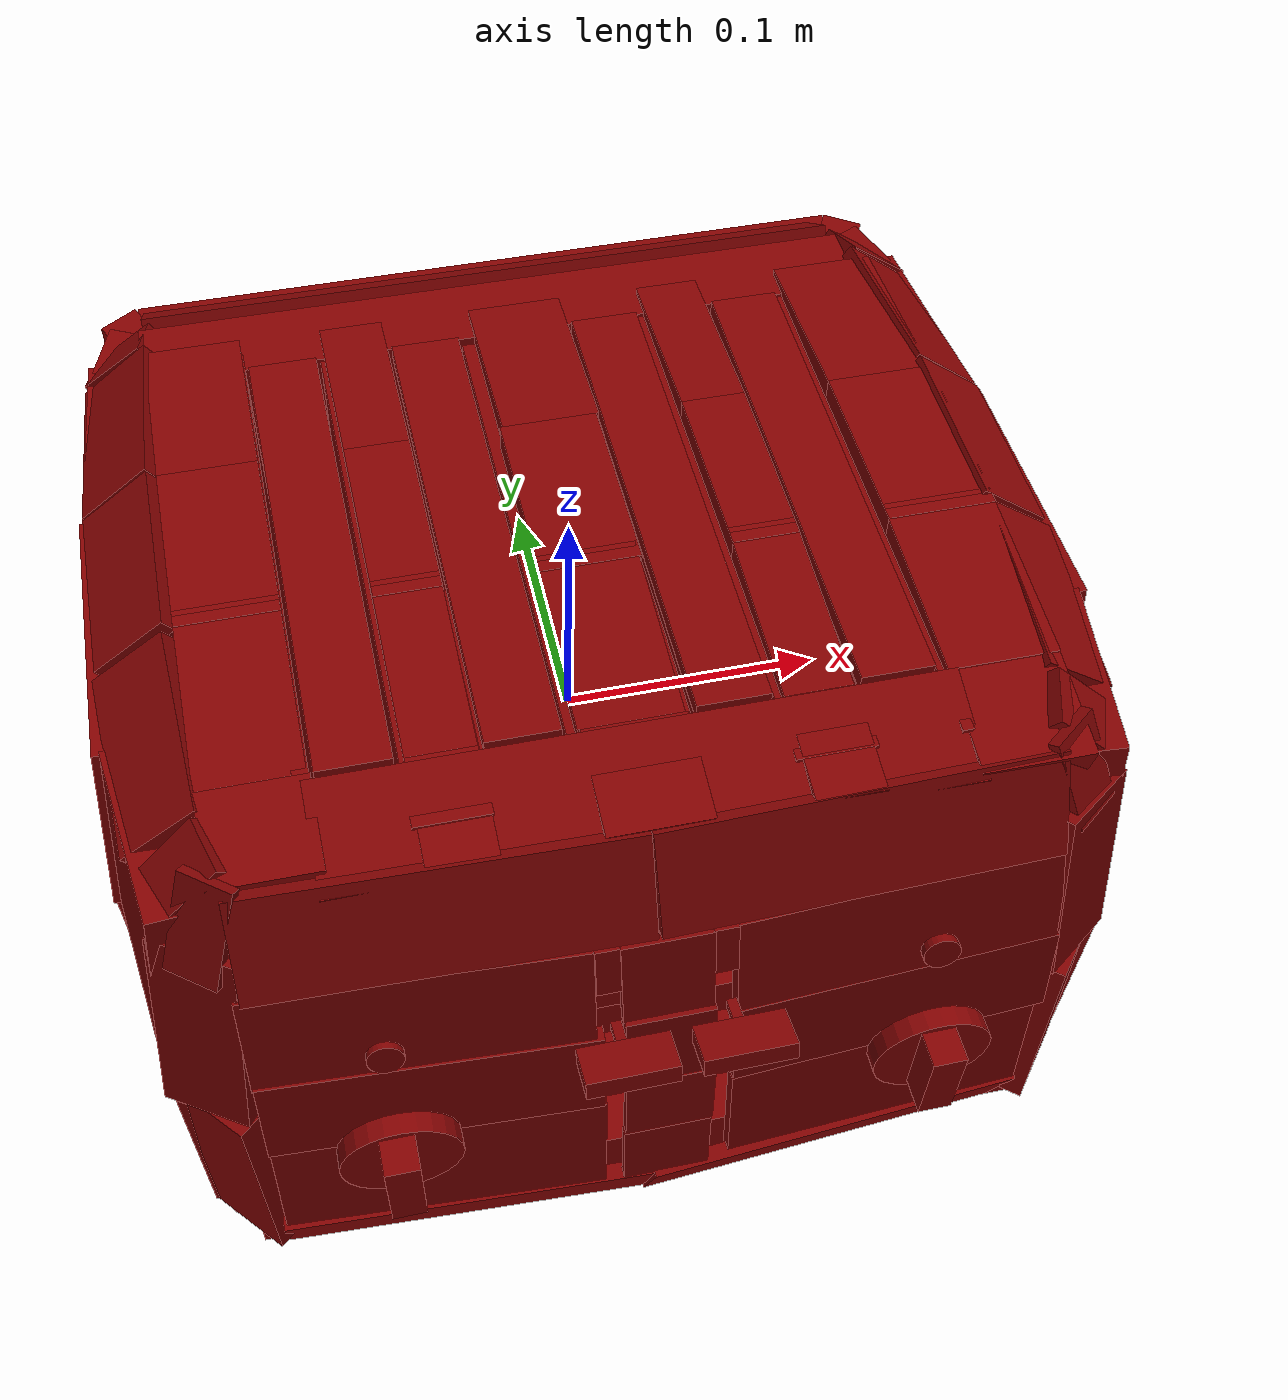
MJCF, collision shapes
<?xml version='1.0' encoding='UTF-8'?>
<mujoco model="model">
  <compiler angle="radian"/>
  <asset>
    <mesh file="visuals/Body001.obj" name="Body001_vis"/>
    <mesh file="visuals/Body002.obj" name="Body002_vis"/>
    <mesh file="visuals/Button001.obj" name="Button001_vis"/>
    <mesh file="visuals/Button002.obj" name="Button002_vis"/>
    <mesh file="visuals/Knob001.obj" name="Knob001_vis"/>
    <mesh file="visuals/Knob002.obj" name="Knob002_vis"/>
    <mesh file="visuals/Lever001.obj" name="Lever001_vis"/>
    <mesh file="visuals/Lever002.obj" name="Lever002_vis"/>
    <texture file="visuals/T_BC001.png" name="Body001_material" type="2d"/>
    <material name="Body001_material" rgba="1 1 1 1.0" texture="Body001_material" shininess="0.5" specular="0.3103448502657381"/>
    <texture file="visuals/T_BC001.png" name="Body002_material" type="2d"/>
    <material name="Body002_material" rgba="1 1 1 1.0" texture="Body002_material" shininess="4" specular="0.3103448502657381"/>
    <texture file="visuals/T_BC001.png" name="Button001_material" type="2d"/>
    <material name="Button001_material" rgba="1 1 1 1.0" texture="Button001_material" shininess="0.5" specular="0.3103448502657381"/>
    <texture file="visuals/T_BC001.png" name="Button002_material" type="2d"/>
    <material name="Button002_material" rgba="1 1 1 1.0" texture="Button002_material" shininess="0.5" specular="0.3103448502657381"/>
    <texture file="visuals/T_BC001.png" name="Knob001_material" type="2d"/>
    <material name="Knob001_material" rgba="1 1 1 1.0" texture="Knob001_material" shininess="0.5" specular="0.3103448502657381"/>
    <texture file="visuals/T_BC001.png" name="Knob002_material" type="2d"/>
    <material name="Knob002_material" rgba="1 1 1 1.0" texture="Knob002_material" shininess="0.5" specular="0.3103448502657381"/>
    <texture file="visuals/T_BC001.png" name="Lever001_material" type="2d"/>
    <material name="Lever001_material" rgba="1 1 1 1.0" texture="Lever001_material" shininess="0.5" specular="0.3103448502657381"/>
    <texture file="visuals/T_BC001.png" name="Lever002_material" type="2d"/>
    <material name="Lever002_material" rgba="1 1 1 1.0" texture="Lever002_material" shininess="0.5" specular="0.3103448502657381"/>
  </asset>
  <default>
    <default class="visual">
      <geom conaffinity="0" contype="0" group="1" type="mesh"/>
    </default>
    <default class="collision">
      <geom group="0" rgba="0.5 0 0 0.5"/>
    </default>
    <default class="spawn">
      <geom group="0" rgba="1 1 1 0.5" contype="0" conaffinity="0"/>
      <site group="0" rgba="1 1 1 0.5"/>
    </default>
    <default class="region">
      <geom group="1" conaffinity="0" contype="0" rgba="0 1 0 0"/>
    </default>
  </default>
  <worldbody>
    <body>
      <body name="object">
        <geom mesh="Body001_vis" type="mesh" solimp="0.998 0.998 0.001" solref="0.001 1" density="100" friction="0.95 0.3 0.1" class="visual" material="Body001_material"/>
        <geom class="collision" type="box" pos="0.088081 0.171569 -0.023721" size="0.05539245530962944 0.013671533204615116 0.044668491929769516" quat="0.9996153712272644 0.0 0.0 -0.027732810005545616"/>
        <geom class="collision" type="box" pos="0.000781 0.155021 0.053631" size="0.14131420850753784 0.012452433817088604 0.03535560145974159" quat="0.9929261803627014 0.11873321980237961 2.6364074191218734e-17 -5.226415306242255e-24"/>
        <geom class="collision" type="box" pos="-0.001906 0.112436 0.020178" size="0.13808095455169678 0.08606130629777908 0.015119839459657669" quat="0.7071067094802856 0.7071068286895752 1.5115338677955452e-16 -5.448491456737759e-18"/>
        <geom class="collision" type="box" pos="-0.001890 0.138988 0.087295" size="0.13664811849594116 0.01245243288576603 0.012800469063222408" quat="0.8860620260238647 0.46356672048568726 1.0293246945430214e-16 -2.890941714807063e-23"/>
        <geom class="collision" type="box" pos="-0.016123 0.174210 -0.023722" size="0.05193882808089256 0.014239027164876461 0.04466840997338295" quat="1.0 0.0 0.0 0.0"/>
        <geom class="collision" type="box" pos="-0.105490 0.169116 -0.023721" size="0.040267303586006165 0.01367128174751997 0.044668491929769516" quat="0.9964933395385742 0.0 0.0 0.08367206901311874"/>
        <geom class="collision" type="box" pos="0.085581 0.171912 -0.082021" size="0.05303531140089035 0.011030254885554314 0.018221210688352585" quat="0.960905909538269 -0.27548280358314514 -0.007642851211130619 -0.026658808812499046"/>
        <geom class="collision" type="box" pos="-0.016094 0.173899 -0.083629" size="0.05179201811552048 0.011061293072998524 0.01853199675679207" quat="0.9612611532211304 -0.2755846083164215 0.0015121020842343569 0.005274335388094187"/>
        <geom class="collision" type="box" pos="-0.104505 0.169742 -0.080891" size="0.03971199318766594 0.011049107648432255 0.018412934616208076" quat="0.9579047560691833 -0.27462247014045715 0.023059016093611717 0.08043167740106583"/>
        <geom class="collision" type="box" pos="0.000061 0.004961 0.031265" size="0.02041749283671379 0.12112927436828613 0.07182016968727112" quat="1.0 0.0 0.0 0.0"/>
        <geom class="collision" type="box" pos="0.061594 0.004958 0.033195" size="0.01363546121865511 0.12112927436828613 0.07182016968727112" quat="1.0 0.0 0.0 0.0"/>
        <geom class="collision" type="box" pos="0.001140 0.005722 0.098054" size="0.017653854563832283 0.03503383323550224 0.0151274548843503" quat="1.0 0.0 0.0 0.0"/>
        <geom class="collision" type="box" pos="0.000246 -0.056404 0.095575" size="0.035033825784921646 0.017653875052928925 0.015127458609640598" quat="0.706587553024292 0.02709091082215309 0.027090897783637047 -0.7065877318382263"/>
        <geom class="collision" type="box" pos="0.001058 -0.109153 0.090645" size="0.018966322764754295 0.017652755603194237 0.015002801083028316" quat="0.7045238614082336 0.06038448214530945 0.060384489595890045 -0.7045236229896545"/>
        <geom class="collision" type="box" pos="0.002126 0.074777 0.095425" size="0.035033825784921646 0.017653875052928925 0.015127452090382576" quat="0.7066655158996582 -0.02497573383152485 -0.024975739419460297 -0.7066656351089478"/>
        <geom class="collision" type="box" pos="-0.060856 0.006670 0.097666" size="0.0117497518658638 0.035031646490097046 0.015125014819204807" quat="1.0 0.0 0.0 0.0"/>
        <geom class="collision" type="box" pos="-0.060856 -0.055457 0.095187" size="0.03503219410777092 0.011749749071896076 0.015124795958399773" quat="0.7065876722335815 0.027090899646282196 0.02709089405834675 -0.7065876126289368"/>
        <geom class="collision" type="box" pos="-0.060855 -0.108700 0.090158" size="0.019475623965263367 0.01174900308251381 0.014999925158917904" quat="0.7045238018035889 0.06038447469472885 0.06038447469472885 -0.7045236825942993"/>
        <geom class="collision" type="box" pos="-0.060856 0.075724 0.095038" size="0.035031162202358246 0.011749749071896076 0.015125235542654991" quat="0.7066655158996582 -0.02497573383152485 -0.02497573383152485 -0.7066656351089478"/>
        <geom class="collision" type="box" pos="0.062005 0.004850 0.098139" size="0.0117497518658638 0.035031650215387344 0.015125014819204807" quat="1.0 0.0 0.0 0.0"/>
        <geom class="collision" type="box" pos="0.062005 -0.057276 0.095661" size="0.03503219410777092 0.011749749071896076 0.015124795958399773" quat="0.7065876722335815 0.027090899646282196 0.02709089405834675 -0.7065876126289368"/>
        <geom class="collision" type="box" pos="0.062006 -0.110081 0.090707" size="0.019029967486858368 0.01174900308251381 0.014999925158917904" quat="0.7045238018035889 0.06038447469472885 0.06038447469472885 -0.7045236825942993"/>
        <geom class="collision" type="box" pos="0.062005 0.073905 0.095512" size="0.035031162202358246 0.011749749071896076 0.015125235542654991" quat="0.7066655158996582 -0.02497573383152485 -0.02497573383152485 -0.7066656351089478"/>
        <geom class="collision" type="box" pos="0.124453 0.004005 0.098565" size="0.019254259765148163 0.035031672567129135 0.015125036239624023" quat="1.0 0.0 0.0 0.0"/>
        <geom class="collision" type="box" pos="0.124453 -0.058122 0.096087" size="0.03503219410777092 0.019254254177212715 0.015124794095754623" quat="0.7065876722335815 0.027090901508927345 0.027090895920991898 -0.7065876126289368"/>
        <geom class="collision" type="box" pos="0.124454 -0.108702 0.088720" size="0.02000635489821434 0.019253036007285118 0.01628694124519825" quat="0.7045238018035889 0.06038447469472885 0.06038447469472885 -0.7045236825942993"/>
        <geom class="collision" type="box" pos="0.124453 0.073059 0.095938" size="0.03503115847706795 0.019254254177212715 0.015125235542654991" quat="0.7066655158996582 -0.024975741282105446 -0.024975737556815147 -0.7066656351089478"/>
        <geom class="collision" type="box" pos="0.000723 0.004961 -0.091103" size="0.15060584247112274 0.15525734424591064 0.014200753532350063" quat="1.0 0.0 0.0 0.0"/>
        <geom class="collision" type="box" pos="-0.120619 0.006670 0.098503" size="0.017710208892822266 0.035031646490097046 0.015125014819204807" quat="1.0 0.0 0.0 0.0"/>
        <geom class="collision" type="box" pos="-0.120619 -0.055457 0.096025" size="0.03503219410777092 0.017710205167531967 0.015124794095754623" quat="0.7065876722335815 0.027090901508927345 0.027090895920991898 -0.7065876126289368"/>
        <geom class="collision" type="box" pos="-0.120122 -0.105916 0.091476" size="0.0166502445936203 0.018205633386969566 0.014999921433627605" quat="0.7045238018035889 0.06038447469472885 0.06038447469472885 -0.7045236825942993"/>
        <geom class="collision" type="box" pos="-0.120619 0.075724 0.095876" size="0.03503115847706795 0.017710205167531967 0.015125235542654991" quat="0.7066655158996582 -0.024975741282105446 -0.024975737556815147 -0.7066656351089478"/>
        <geom class="collision" type="box" pos="-0.105025 0.005001 0.016676" size="0.0026891015004366636 0.09859595447778702 0.0918901190161705" quat="1.0 0.0 0.0 0.0"/>
        <geom class="collision" type="box" pos="-0.061411 0.004958 0.033195" size="0.01284023281186819 0.12112927436828613 0.07182016968727112" quat="1.0 0.0 0.0 0.0"/>
        <geom class="collision" type="box" pos="0.001245 -0.112879 0.101656" size="0.01945185847580433 0.0029280728194862604 0.10654899477958679" quat="0.5688296556472778 -0.4200344383716583 0.5688364505767822 -0.4200344979763031"/>
        <geom class="collision" type="box" pos="-0.068715 -0.136666 0.083910" size="0.01945185847580433 0.06606195867061615 0.002928077010437846" quat="0.5913438200950623 0.3811352849006653 0.37233296036720276 -0.6053235530853271"/>
        <geom class="collision" type="box" pos="-0.080824 -0.148505 0.045082" size="0.020943447947502136 0.056785546243190765 0.0029280732851475477" quat="0.5432334542274475 0.4456195831298828 0.42652443051338196 -0.5695590376853943"/>
        <geom class="collision" type="box" pos="-0.071815 -0.160780 -0.079956" size="0.01945185475051403 0.002928073052316904 0.06765502691268921" quat="0.6924258470535278 0.11927063018083572 0.7058899998664856 0.08966749906539917"/>
        <geom class="collision" type="box" pos="0.066319 -0.160189 -0.080798" size="0.01945185475051403 0.0029280728194862604 0.07105861604213715" quat="0.6974658966064453 0.08476696908473969 0.6993010640144348 0.13165821135044098"/>
        <geom class="collision" type="box" pos="0.066366 -0.136720 0.083910" size="0.01945185847580433 0.06841100007295609 0.002928080502897501" quat="0.5913495421409607 0.38113173842430115 -0.37233662605285645 0.6053178906440735"/>
        <geom class="collision" type="box" pos="0.080438 -0.148257 0.045681" size="0.020330660045146942 0.05717505142092705 0.0029280681628733873" quat="0.5438447594642639 0.4451960623264313 -0.42696887254714966 0.5689736008644104"/>
        <geom class="collision" type="box" pos="0.080052 -0.161292 -0.037929" size="0.025655826553702354 0.05666908249258995 0.0024713824968785048" quat="0.5049710869789124 0.4865931272506714 -0.4677930176258087 0.5379600524902344"/>
        <geom class="collision" type="box" pos="0.104960 0.004958 0.033195" size="0.0019342174055054784 0.12112928181886673 0.07182016968727112" quat="7.549790126404332e-08 0.0 1.0 0.0"/>
        <geom class="collision" type="box" pos="0.000723 0.004961 -0.045932" size="0.10558580607175827 0.12112928926944733 0.010444018058478832" quat="1.0 0.0 0.0 0.0"/>
        <geom class="collision" type="box" pos="0.000029 -0.168099 -0.048320" size="0.0017779064364731312 0.01576468162238598 0.01621513068675995" quat="0.7064796686172485 -0.02977382019162178 -0.02977382019162178 -0.7064796686172485"/>
        <geom class="collision" type="box" pos="0.000418 -0.165155 -0.015713" size="0.0017779064364731312 0.01576468162238598 0.01621513068675995" quat="0.7064796686172485 -0.02977382019162178 -0.02977382019162178 -0.7064796686172485"/>
        <geom class="collision" type="box" pos="0.000418 -0.160554 0.016347" size="0.0017531170742586255 0.015544874593615532 0.015989042818546295" quat="0.7041632533073425 -0.0644516572356224 -0.0644516721367836 -0.7041633725166321"/>
        <geom class="collision" type="box" pos="-0.000140 -0.152564 0.050107" size="0.001753117423504591 0.015544874593615532 0.017158180475234985" quat="0.7020131945610046 -0.08471927791833878 -0.08471929281949997 -0.702013373374939"/>
        <geom class="collision" type="box" pos="-0.019855 -0.150484 0.057339" size="0.0017531176563352346 0.004173330496996641 0.009792251512408257" quat="0.7020131945610046 -0.08471927791833878 -0.08471929281949997 -0.702013373374939"/>
        <geom class="collision" type="box" pos="0.019189 -0.150484 0.057339" size="0.0017531176563352346 0.004173330496996641 0.009792251512408257" quat="0.7020131945610046 -0.08471927791833878 -0.08471929281949997 -0.702013373374939"/>
        <geom class="collision" type="box" pos="-0.079782 -0.156992 0.007153" size="0.01945185847580433 0.057808902114629745 0.0029280793387442827" quat="0.5208864808082581 0.47154712677001953 0.45375627279281616 -0.5481111407279968"/>
        <geom class="collision" type="box" pos="-0.079690 -0.161994 -0.038079" size="0.025615401566028595 0.05797916278243065 0.002928084461018443" quat="0.5146521925926208 0.47834324836730957 0.46091026067733765 -0.5421093702316284"/>
        <geom class="collision" type="box" pos="0.080923 -0.156240 0.007040" size="0.01945185847580433 0.05808183178305626 0.0029280816670507193" quat="0.5208864808082581 0.47154712677001953 -0.45375627279281616 0.5481111407279968"/>
        <geom class="collision" type="box" pos="0.148804 -0.137377 0.040329" size="0.01599324680864811 0.038283202797174454 0.004218402784317732" quat="0.7373143434524536 0.6024975180625916 0.21775461733341217 0.21435299515724182"/>
        <geom class="collision" type="box" pos="0.150294 -0.147374 -0.037704" size="0.015993241220712662 0.03970905765891075 0.004218392539769411" quat="0.6675412058830261 0.6141427755355835 0.3240535855293274 0.2687128782272339"/>
        <geom class="collision" type="box" pos="0.160536 0.084463 0.048447" size="0.040565941482782364 0.044129591435194016 0.008903085254132748" quat="0.5046805143356323 0.4523944854736328 0.4907858073711395 0.5475090146064758"/>
        <geom class="collision" type="box" pos="0.165638 -0.008120 0.048466" size="0.04413215070962906 0.05179201066493988 0.0089121637865901" quat="0.005553995259106159 -0.6674209833145142 -0.004977995064109564 -0.7446432709693909"/>
        <geom class="collision" type="box" pos="0.159167 -0.091615 0.048466" size="0.03423191234469414 0.044132113456726074 0.008912008255720139" quat="0.5624980926513672 0.5041662454605103 0.4373708963394165 0.4879743754863739"/>
        <geom class="collision" type="box" pos="0.157596 0.107139 -0.042774" size="0.046757664531469345 0.06167353317141533 0.008912205696105957" quat="0.05947696790099144 -0.7098848819732666 -0.05946805700659752 -0.6992778182029724"/>
        <geom class="collision" type="box" pos="0.169602 -0.004194 -0.040779" size="0.044131334871053696 0.05179202929139137 0.008912165649235249" quat="0.005848488304764032 -0.7121397852897644 -0.004623087123036385 -0.7019981145858765"/>
        <geom class="collision" type="box" pos="0.161634 -0.097590 -0.040445" size="0.04026731848716736 0.04413210600614548 0.008911997079849243" quat="0.5344099998474121 0.5333434343338013 0.4712783992290497 0.4559028148651123"/>
        <geom class="collision" type="box" pos="0.144381 0.150447 0.048674" size="0.00785065907984972 0.044126734137535095 0.008892967365682125" quat="0.16748973727226257 0.18874789774417877 0.6277308464050293 0.7363935112953186"/>
        <geom class="collision" type="box" pos="0.150640 0.134200 0.049436" size="0.012968060560524464 0.04412464052438736 0.008885515853762627" quat="0.39171671867370605 0.4041488468647003 0.5350667834281921 0.630020022392273"/>
        <geom class="collision" type="box" pos="0.146861 0.101843 -0.087884" size="0.017739688977599144 0.05048474296927452 0.014200737699866295" quat="0.0784950777888298 -0.2137913554906845 -0.009843683801591396 -0.9736708402633667"/>
        <geom class="collision" type="box" pos="0.154710 0.004961 -0.089789" size="0.017739690840244293 0.050484735518693924 0.014200742356479168" quat="6.602014934742328e-08 -0.21417465806007385 1.906587421274253e-08 -0.9767953753471375"/>
        <geom class="collision" type="box" pos="0.145064 -0.093967 -0.088138" size="0.01773970201611519 0.05048474669456482 0.014200742356479168" quat="0.09398642182350159 0.21630987524986267 0.006197109818458557 0.9717706441879272"/>
        <geom class="collision" type="box" pos="0.152516 0.007910 0.103104" size="0.016134342178702354 0.03503168001770973 0.0030713521409779787" quat="4.513292140018166e-08 -0.31964629888534546 5.4137906602136354e-08 -0.9475369453430176"/>
        <geom class="collision" type="box" pos="0.151513 -0.063951 0.099253" size="0.016134344041347504 0.03503168001770973 0.003071340499445796" quat="0.017029883340001106 0.30914226174354553 -0.03724353760480881 0.9501336812973022"/>
        <geom class="collision" type="box" pos="0.150921 0.079447 0.100086" size="0.016134347766637802 0.03503168746829033 0.003071340499445796" quat="0.015770696103572845 -0.32475802302360535 -0.038827378302812576 -0.9448682069778442"/>
        <geom class="collision" type="box" pos="0.145427 -0.112672 0.097559" size="0.010261619463562965 0.013959992676973343 0.0026491584721952677" quat="0.7361759543418884 0.3175431489944458 0.1714431494474411 0.5725544095039368"/>
        <geom class="collision" type="box" pos="0.142266 -0.128038 0.088487" size="0.009804214350879192 0.01857624389231205 0.0020469054579734802" quat="0.8055134415626526 0.5018000602722168 0.15257471799850464 0.2758001387119293"/>
        <geom class="collision" type="box" pos="0.148093 0.123922 0.096320" size="0.010261621326208115 0.013959987089037895 0.002649166388437152" quat="0.6100725531578064 0.10540380328893661 0.3217537999153137 0.7163630723953247"/>
        <geom class="collision" type="box" pos="-0.150307 -0.147341 -0.037376" size="0.01599324308335781 0.040039047598838806 0.0042183916084468365" quat="0.6675410866737366 0.614142894744873 -0.32405364513397217 -0.26871293783187866"/>
        <geom class="collision" type="box" pos="-0.142266 -0.128038 0.088487" size="0.009804214350879192 0.01857624389231205 0.0020469054579734802" quat="0.8055134415626526 0.5018000602722168 -0.15257471799850464 -0.2758001387119293"/>
        <geom class="collision" type="box" pos="-0.160536 0.084463 0.048447" size="0.040565941482782364 0.044129591435194016 0.008903085254132748" quat="0.5046805143356323 0.4523944854736328 -0.4907858073711395 -0.5475090146064758"/>
        <geom class="collision" type="box" pos="-0.165638 -0.008120 0.048466" size="0.04413215443491936 0.051792021840810776 0.008912169374525547" quat="0.005553995259106159 -0.6674209833145142 0.004977995064109564 0.7446432709693909"/>
        <geom class="collision" type="box" pos="-0.159167 -0.091615 0.048466" size="0.03423191234469414 0.044132113456726074 0.008912008255720139" quat="0.5624980926513672 0.5041662454605103 -0.4373708963394165 -0.4879743754863739"/>
        <geom class="collision" type="box" pos="-0.157596 0.107139 -0.042774" size="0.046757664531469345 0.06167353317141533 0.008912205696105957" quat="0.05947696790099144 -0.7098848819732666 0.05946805700659752 0.6992778182029724"/>
        <geom class="collision" type="box" pos="-0.169602 -0.004194 -0.040779" size="0.044131334871053696 0.05179202929139137 0.008912165649235249" quat="0.005848488304764032 -0.7121397852897644 0.004623087123036385 0.7019981145858765"/>
        <geom class="collision" type="box" pos="-0.161634 -0.097590 -0.040445" size="0.04026731848716736 0.04413210600614548 0.008911997079849243" quat="0.5344099998474121 0.5333434343338013 -0.4712783992290497 -0.4559028148651123"/>
        <geom class="collision" type="box" pos="-0.146861 0.101843 -0.087884" size="0.017739688977599144 0.05048474296927452 0.014200737699866295" quat="0.0784950777888298 -0.2137913554906845 0.009843683801591396 0.9736708402633667"/>
        <geom class="collision" type="box" pos="-0.154710 0.004961 -0.089789" size="0.017739690840244293 0.050484735518693924 0.014200742356479168" quat="6.602014934742328e-08 -0.21417465806007385 -1.906587421274253e-08 0.9767953753471375"/>
        <geom class="collision" type="box" pos="-0.145064 -0.093967 -0.088138" size="0.01773970201611519 0.05048474669456482 0.014200742356479168" quat="0.09398642182350159 0.21630987524986267 -0.006197109818458557 -0.9717706441879272"/>
        <geom class="collision" type="box" pos="-0.152516 0.007910 0.103104" size="0.016134342178702354 0.03503168001770973 0.0030713521409779787" quat="4.513292140018166e-08 -0.31964629888534546 -5.4137906602136354e-08 0.9475369453430176"/>
        <geom class="collision" type="box" pos="-0.150921 0.079447 0.100086" size="0.016134347766637802 0.03503168746829033 0.003071340499445796" quat="0.015770696103572845 -0.32475802302360535 0.038827378302812576 0.9448682069778442"/>
        <geom class="collision" type="box" pos="-0.151513 -0.063951 0.099253" size="0.016134344041347504 0.03503168001770973 0.003071340499445796" quat="0.017029883340001106 0.30914226174354553 0.03724353760480881 -0.9501336812973022"/>
        <geom class="collision" type="box" pos="-0.145427 -0.112672 0.097559" size="0.010261619463562965 0.013959992676973343 0.0026491584721952677" quat="0.7361759543418884 0.3175431489944458 -0.1714431494474411 -0.5725544095039368"/>
        <geom class="collision" type="box" pos="-0.144381 0.150447 0.048674" size="0.00785065907984972 0.044126734137535095 0.008892967365682125" quat="0.16748973727226257 0.18874789774417877 -0.6277308464050293 -0.7363935112953186"/>
        <geom class="collision" type="box" pos="-0.150640 0.134200 0.049436" size="0.012968060560524464 0.04412464052438736 0.008885515853762627" quat="0.39171671867370605 0.4041488468647003 -0.5350667834281921 -0.630020022392273"/>
        <geom class="collision" type="box" pos="-0.148093 0.123922 0.096320" size="0.010261621326208115 0.013959987089037895 0.002649166388437152" quat="0.6100725531578064 0.10540380328893661 -0.3217537999153137 -0.7163630723953247"/>
        <geom class="collision" type="box" pos="-0.148932 -0.135898 0.042148" size="0.01599324680864811 0.038283202797174454 0.004218402784317732" quat="0.7559158802032471 0.588578999042511 -0.193276047706604 -0.21168452501296997"/>
        <body name="Body002">
          <geom mesh="Body002_vis" type="mesh" solimp="0.998 0.998 0.001" solref="0.001 1" density="100" friction="0.95 0.3 0.1" class="visual" material="Body002_material"/>
        </body>
        <body name="Button001">
          <joint axis="0.0 0.9719247817993164 -0.23529194295406342" pos="-0.093715 -0.156737 0.037986" limited="true" name="Button001_joint" range="0.0 0.0008" type="slide" damping="1" frictionloss="1" armature=".01" stiffness="0.2" springref="-0.1"/>
          <geom mesh="Button001_vis" type="mesh" solimp="0.998 0.998 0.001" solref="0.001 1" density="100" friction="0.95 0.3 0.1" class="visual" material="Button001_material"/>
          <geom class="collision" type="cylinder" pos="-0.093715 -0.156536 0.037832" size="0.006280657835304737 0.00129419076256454" quat="0.6298929452896118 -0.7763615846633911 0.0018386580049991608 -0.022230222821235657"/>
        </body>
        <body name="Button002">
          <joint axis="0.0 0.9728217124938965 -0.2315555065870285" pos="0.093382 -0.156737 0.037986" limited="true" name="Button002_joint" range="0.0 0.0008" type="slide" damping="1" frictionloss="1" armature=".01" stiffness="0.2" springref="-0.1"/>
          <geom mesh="Button002_vis" type="mesh" solimp="0.998 0.998 0.001" solref="0.001 1" density="100" friction="0.95 0.3 0.1" class="visual" material="Button002_material"/>
          <geom class="collision" type="cylinder" pos="0.093290 -0.156536 0.037832" size="0.0064547122456133366 0.0016535837203264236" quat="0.6298929452896118 -0.7763615846633911 0.0018386580049991608 -0.022230222821235657"/>
        </body>
        <body name="Knob001">
          <joint axis="0.0 1.0 0.0" pos="-0.093716 -0.176094 -0.010398" limited="true" name="Knob001_joint" range="0.0 4.485496177625427" type="hinge" damping="0.05" armature="0.001"/>
          <geom mesh="Knob001_vis" type="mesh" solimp="0.998 0.998 0.001" solref="0.001 1" density="100" friction="0.95 0.3 0.1" class="visual" material="Knob001_material"/>
          <geom class="collision" type="cylinder" pos="-0.093789 -0.167478 -0.010380" size="0.021372664719820023 0.0036418430972844362" quat="0.6453710794448853 0.6453714966773987 0.2889564633369446 -0.2889566123485565"/>
          <geom class="collision" type="box" pos="-0.094421 -0.176855 -0.009570" size="0.006064905319362879 0.006732615176588297 0.017911355942487717" quat="0.999995768070221 0.0 -0.002904814202338457 0.0"/>
        </body>
        <body name="Knob002">
          <joint axis="0.0 1.0 0.0" pos="0.093382 -0.170964 -0.010398" limited="true" name="Knob002_joint" range="0.0 4.485496177625427" type="hinge" damping="0.05" armature="0.001"/>
          <geom mesh="Knob002_vis" type="mesh" solimp="0.998 0.998 0.001" solref="0.001 1" density="100" friction="0.95 0.3 0.1" class="visual" material="Knob002_material"/>
          <geom class="collision" type="cylinder" pos="0.093345 -0.167478 -0.010380" size="0.021372664719820023 0.0036418430972844362" quat="0.6453710794448853 0.6453714966773987 0.2889564633369446 -0.2889566123485565"/>
          <geom class="collision" type="box" pos="0.092714 -0.176855 -0.009570" size="0.006064905319362879 0.006732615176588297 0.017911355942487717" quat="0.999995768070221 0.0 -0.002904814202338457 0.0"/>
        </body>
        <body name="Lever001">
          <joint axis="0.0 -0.15230576694011688 -0.9883334040641785" pos="-0.019298 -0.169780 0.041422" limited="true" name="Lever001_joint" range="0.0 0.092" type="slide" damping="1" frictionloss="1" armature=".01" stiffness="1" springref="-1.1"/>
          <geom mesh="Lever001_vis" type="mesh" solimp="0.998 0.998 0.001" solref="0.001 1" density="100" friction="0.95 0.3 0.1" class="visual" material="Lever001_material"/>
          <geom class="collision" type="box" pos="-0.018893 -0.177899 0.043574" size="0.01545801293104887 0.007655643858015537 0.0034616717603057623" quat="0.9910058379173279 -0.1338186115026474 -2.971370072272159e-17 -2.3059548107922746e-24" name="sideL_lever_knob"/>
          <geom class="collision" type="box" pos="-0.088439 0.001762 0.105751" size="0.012550000101327896 0.09376424551010132 0.0032419110648334026" quat="1.0 0.0 0.0 0.0" name="sideL_slotL_floor"/>
          <geom class="collision" type="box" pos="-0.034711 0.001762 0.105751" size="0.01255000103265047 0.09376424551010132 0.0032419110648334026" quat="1.0 0.0 0.0 0.0" name="sideL_slotR_floor"/>
          <geom class="collision" type="box" pos="-0.019125 -0.166041 0.040405" size="0.0017561395652592182 0.00499917333945632 0.0017561394488438964" quat="0.9923955798149109 -0.12308938056230545 -2.7331385816983145e-17 -1.0766493541313963e-23"/>
        </body>
        <body name="Lever002">
          <joint axis="0.0 -0.14017458260059357 -0.9901268482208252" pos="0.019179 -0.169780 0.041422" limited="true" name="Lever002_joint" range="0.0 0.092" type="slide" damping="1" frictionloss="1" armature=".01" stiffness="1" springref="-1.1"/>
          <geom mesh="Lever002_vis" type="mesh" solimp="0.998 0.998 0.001" solref="0.001 1" density="100" friction="0.95 0.3 0.1" class="visual" material="Lever002_material"/>
          <geom class="collision" type="box" pos="0.019221 -0.177899 0.043574" size="0.01545801293104887 0.007655643858015537 0.0034616717603057623" quat="0.9910058379173279 -0.1338186115026474 -2.971370072272159e-17 -2.3059548107922746e-24" name="sideR_lever_knob"/>
          <geom class="collision" type="box" pos="0.089073 0.001762 0.105751" size="0.01255000103265047 0.09376424551010132 0.0032419110648334026" quat="1.0 0.0 0.0 0.0" name="sideR_slotR_floor"/>
          <geom class="collision" type="box" pos="0.034191 0.001762 0.105751" size="0.012550000101327896 0.09376424551010132 0.00324191153049469" quat="1.0 0.0 0.0 0.0" name="sideR_slotL_floor"/>
          <geom class="collision" type="box" pos="0.019526 -0.166024 0.040377" size="0.0017561395652592182 0.0049991728737950325 0.0017561394488438964" quat="0.9941444993019104 -0.108058862388134 -2.399388740762154e-17 1.3880301478050898e-24"/>
        </body>
        <geom class="region" name="reg_main" type="box" pos="0.0 0.0078815 -5.000000000005e-07" size="0.177933 0.17849150000000003 0.1128635"/>
      </body>
    </body>
  </worldbody>
  <actuator>
    <motor name="Button001_joint_actuator" joint="Button001_joint" gear="0.1"/>
    <motor name="Button002_joint_actuator" joint="Button002_joint" gear="0.5"/>
    <motor name="Knob001_joint_actuator" joint="Knob001_joint" gear="5"/>
    <motor name="Knob002_joint_actuator" joint="Knob002_joint" gear="5"/>
    <motor name="Lever001_joint_actuator" joint="Lever001_joint" gear="2"/>
    <motor name="Lever002_joint_actuator" joint="Lever002_joint" gear="2"/>
  </actuator>
</mujoco>
